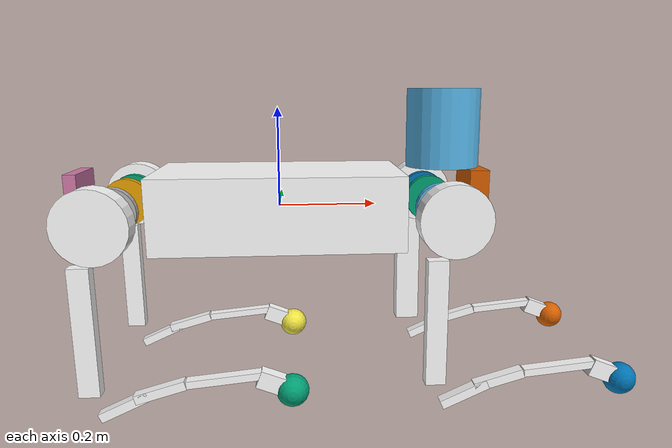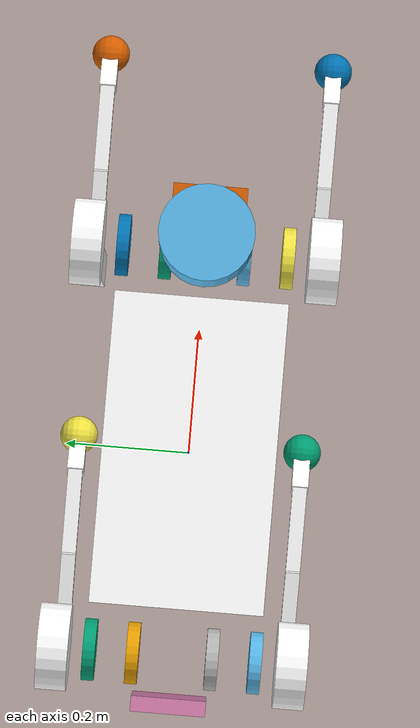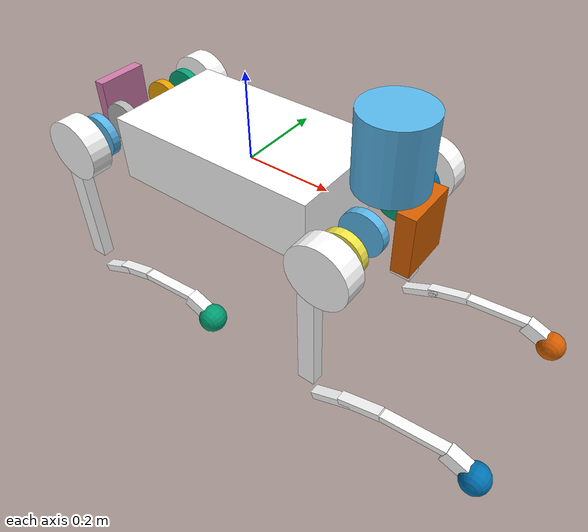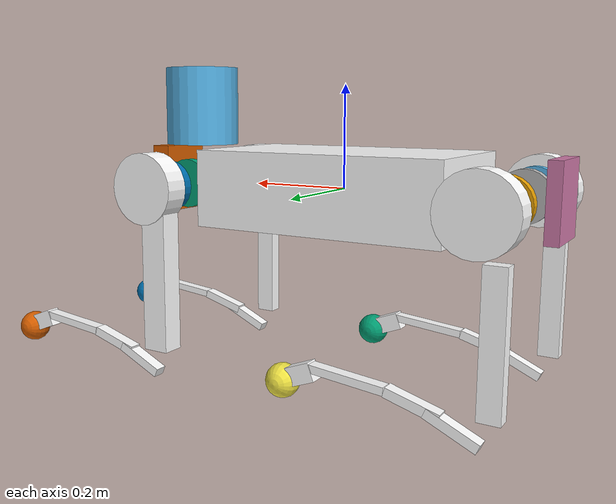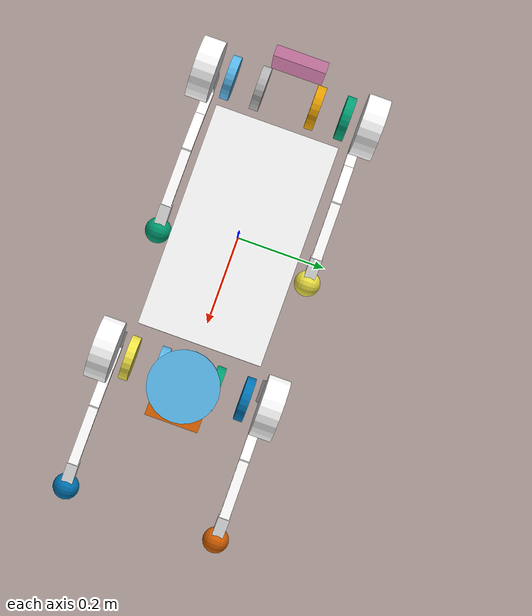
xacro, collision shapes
<?xml version="1.0"?>

<robot name="b2_description" xmlns:xacro="http://www.ros.org/wiki/xacro">

    <xacro:arg name="gpu" default="true"/>

    <xacro:include filename="$(find b2_description)/urdf/b2_description.urdf"/>
    <xacro:include filename="$(find b2_description)/xacro/gazebo.xacro"/>

</robot>

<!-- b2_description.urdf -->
<robot
  name="b2_description">
  <link
    name="base_link">
    <inertial>
      <origin
        xyz="0.000458 0.005261 0.000665"
        rpy="0 0 0" />
      <mass
        value="35.86" />
      <inertia
        ixx="0.27466"
        ixy="-0.000622"
        ixz="0.00315"
        iyy="1.0618"
        iyz="-0.00139"
        izz="1.1825" />
    </inertial>
    <visual>
      <origin
        xyz="0 0 0"
        rpy="0 0 0" />
      <geometry>
        <mesh
          filename="package://b2_description/meshes/base_link.dae" />
      </geometry>
      <material
        name="">
        <color
          rgba="1 1 1 1" />
      </material>
    </visual>
    <collision>
      <origin
        xyz="0 0 0"
        rpy="0 0 0" />
        <geometry>
          <box size="0.5 0.28 0.15" />
        </geometry>
    </collision>
  </link>
  <link
    name="lidar_link">
    <inertial>
      <origin
        xyz="0.34218 0 0.17851"
        rpy="0 0 0" />
      <mass
        value="4.19E-15" />
      <inertia
        ixx="1.68E-27"
        ixy="-3.2E-45"
        ixz="7.68E-44"
        iyy="1.68E-27"
        iyz="-9.26E-47"
        izz="1.68E-27" />
    </inertial>
    <collision>
      <origin
        xyz="0 0 -0.02"
        rpy="0 0 0" />
      <geometry>
        <cylinder length="0.16" radius="0.076" />
      </geometry>
    </collision>
  </link>
  <joint
    name="joint_lidar"
    type="fixed">
    <origin
      xyz="0.34218 0 0.17851"
      rpy="0 0 0" />
    <parent
      link="base_link" />
    <child
      link="lidar_link" />
    <axis
      xyz="0 0 0" />
  </joint>
  <link
    name="f_dc_link">
    <inertial>
      <origin
        xyz="3.47E-18 0 5.55E-17"
        rpy="0 0 0" />
      <mass
        value="4.19E-15" />
      <inertia
        ixx="1.68E-27"
        ixy="-9.81E-45"
        ixz="-2.54E-44"
        iyy="1.68E-27"
        iyz="0"
        izz="1.68E-27" />
    </inertial>
  </link>
  <joint
    name="joint_f_dc"
    type="fixed">
    <origin
      xyz="0.41251 0.024997 0.04765"
      rpy="-2.3562 0 -1.5708" />
    <parent
      link="base_link" />
    <child
      link="f_dc_link" />
    <axis
      xyz="0 0 0" />
  </joint>
  <link
    name="r_dc_link">
    <inertial>
      <origin
        xyz="-7.46E-16 -3.33E-16 -1.11E-15"
        rpy="0 0 0" />
      <mass
        value="4.19E-15" />
      <inertia
        ixx="1.68E-27"
        ixy="-4.31E-44"
        ixz="2.48E-45"
        iyy="1.68E-27"
        iyz="0"
        izz="1.68E-27" />
    </inertial>
  </link>
  <joint
    name="joint_r_dc"
    type="fixed">
    <origin
      xyz="-0.4081 -0.025 0.024861"
      rpy="-2.3557 0 1.5708" />
    <parent
      link="base_link" />
    <child
      link="r_dc_link" />
    <axis
      xyz="0 0 0" />
  </joint>
  <link
    name="imu_link">
    <inertial>
      <origin
        xyz="-2.02E-17 1.73E-17 -1.39E-17"
        rpy="0 0 0" />
      <mass
        value="4.19E-15" />
      <inertia
        ixx="1.68E-27"
        ixy="1.84E-44"
        ixz="-7.35E-44"
        iyy="1.68E-27"
        iyz="-3.67E-44"
        izz="1.68E-27" />
    </inertial>
  </link>
  <joint
    name="joint_imu"
    type="fixed">
    <origin
      xyz="0 -0.02341 0.04927"
      rpy="0 0 0" />
    <parent
      link="base_link" />
    <child
      link="imu_link" />
    <axis
      xyz="0 0 0" />
  </joint>
  <link
    name="head_Link">
    <inertial>
      <origin
        xyz="0.33989 -0.000168 0.12029"
        rpy="0 0 0" />
      <mass
        value="3.6885" />
      <inertia
        ixx="0.026455"
        ixy="3.15E-05"
        ixz="0.00166"
        iyy="0.029221"
        iyz="-3.27E-05"
        izz="0.010918" />
    </inertial>
    <collision>
      <origin
        xyz="0.41 0 0.005"
        rpy="0 0 0" />
      <geometry>
        <box size="0.04 0.12 0.14" />
      </geometry>
    </collision>
  </link>
  <joint
    name="joint_head"
    type="fixed">
    <origin
      xyz="0 0 0"
      rpy="0 0 0" />
    <parent
      link="base_link" />
    <child
      link="head_Link" />
    <axis
      xyz="0 0 0" />
  </joint>
  <link
    name="tail_link">
    <inertial>
      <origin
        xyz="-0.37448 0.000488 0.006495"
        rpy="0 0 0" />
      <mass
        value="0.795" />
      <inertia
        ixx="0.0028118"
        ixy="1.95E-05"
        ixz="-7.87E-06"
        iyy="0.0047506"
        iyz="-1.57E-05"
        izz="0.0029154" />
    </inertial>
    <collision>
      <origin
        xyz="-0.405 0 0.005"
        rpy="0 0 0" />
      <geometry>
        <box size="0.025 0.12 0.14" />
      </geometry>
    </collision>
  </link>
  <joint
    name="joint_tail"
    type="fixed">
    <origin
      xyz="0 0 0"
      rpy="0 0 0" />
    <parent
      link="base_link" />
    <child
      link="tail_link" />
    <axis
      xyz="0 0 0" />
  </joint>
  <link
    name="FL_hip">
    <inertial>
      <origin
        xyz="-0.003841 -0.009068 0"
        rpy="0 0 0" />
      <mass
        value="2.673" />
      <inertia
        ixx="0.0033188"
        ixy="7.16E-05"
        ixz="-3.77E-07"
        iyy="0.0048743"
        iyz="4E-09"
        izz="0.0037087" />
    </inertial>
    <visual>
      <origin
        xyz="0 0 0"
        rpy="0 0 0" />
      <geometry>
        <mesh
          filename="package://b2_description/meshes/FL_hip.dae" />
      </geometry>
      <material
        name="">
        <color
          rgba="1 1 1 1" />
      </material>
    </visual>
    <collision>
      <origin
        xyz="0 0.12 0"
        rpy="1.5707963267948966 0 0" />
      <geometry>
        <cylinder length="0.05" radius="0.07" />
      </geometry>
    </collision>
  </link>
  <joint
    name="FL_hip_joint"
    type="revolute">
    <origin
      xyz="0.3285 0.072 0"
      rpy="0 0 0" />
    <parent
      link="base_link" />
    <child
      link="FL_hip" />
    <axis
      xyz="1 0 0" />
    <limit
      lower="-0.87"
      upper="0.87"
      effort="200"
      velocity="23" />
  </joint>
  <link name="FL_hip_rotor">
    <collision>
      <origin rpy="0 1.5707963267948966 0" xyz="0 0 0"/>
      <geometry>
        <cylinder length="0.02" radius="0.05"/>
      </geometry>
    </collision>
    <inertial>
      <origin rpy="0 0 0" xyz="0.0 0.0 0.0"/>
      <mass value="0.2734"/>
      <inertia ixx="0.000144463" ixy="0.0" ixz="0.0" iyy="0.000144463" iyz="0.0" izz="0.000263053"/>
    </inertial>
  </link>
  <joint name="FL_hip_rotor_joint" type="fixed">
    <origin rpy="0 0 0" xyz="0.20205 0.072 0"/>
    <parent link="base_link"/>
    <child link="FL_hip_rotor"/>
  </joint>
  <link
    name="FL_thigh">
    <inertial>
      <origin
        xyz="-0.006279 -0.032049 -0.057835"
        rpy="0 0 0" />
      <mass
        value="4.536" />
      <inertia
        ixx="0.062299"
        ixy="0.00087781"
        ixz="-0.0036475"
        iyy="0.061399"
        iyz="0.0083537"
        izz="0.0081997" />
    </inertial>
    <visual>
      <origin
        xyz="0 0 0"
        rpy="0 0 0" />
      <geometry>
        <mesh
          filename="package://b2_description/meshes/FL_thigh.dae" />
      </geometry>
      <material
        name="">
        <color
          rgba="1 1 1 1" />
      </material>
    </visual>
    <collision>
      <origin
        xyz="-0.025 0 -0.16"
        rpy="0 1.57 0" />
      <geometry>
        <box size="0.32 0.0445 0.054" />
      </geometry>
    </collision>
  </link>
  <joint
    name="FL_thigh_joint"
    type="revolute">
    <origin
      xyz="0 0.11973 0"
      rpy="0 0 0" />
    <parent
      link="FL_hip" />
    <child
      link="FL_thigh" />
    <axis
      xyz="0 1 0" />
    <limit
      lower="-0.94"
      upper="4.69"
      effort="200"
      velocity="23" />
  </joint>
  <link name="FL_thigh_rotor">
    <collision>
      <origin rpy="1.5707963267948966 0 0" xyz="0 0 0"/>
      <geometry>
        <cylinder length="0.02" radius="0.05"/>
      </geometry>
    </collision>
    <inertial>
      <origin rpy="0 0 0" xyz="0.0 0.0 0.0"/>
      <mass value="0.2734"/>
      <inertia ixx="0.000144463" ixy="0.0" ixz="0.0" iyy="0.000144463" iyz="0.0" izz="0.000263053"/>
    </inertial>
  </link>
  <joint name="FL_thigh_rotor_joint" type="fixed">
    <origin rpy="0 0 0" xyz="0 -0.00798 0"/>
    <parent link="FL_hip"/>
    <child link="FL_thigh_rotor"/>
  </joint>
  <link
    name="FL_calf">
    <inertial>
      <origin
        xyz="0.012422 0 -0.12499"
        rpy="0 0 0" />
      <mass
        value="0.404" />
      <inertia
        ixx="0.01143"
        ixy="0"
        ixz="0.000643"
        iyy="0.011534"
        iyz="0"
        izz="0.000331" />
    </inertial>
    <visual>
      <origin
        xyz="0 0 0"
        rpy="0 0 0" />
      <geometry>
        <mesh
          filename="package://b2_description/meshes/FL_calf.dae" />
      </geometry>
      <material
        name="">
        <color
          rgba="1 1 1 1" />
      </material>
    </visual>
    <collision>
      <origin rpy="0 1.2 0" xyz="-0.002 0 -0.03"/>
      <geometry>
        <box size="0.1 0.0245 0.018"/>
      </geometry>
    </collision>
    <collision>
      <origin rpy="0 1.35 0" xyz="0.022 0 -0.1"/>
      <geometry>
        <box size="0.1 0.0245 0.018"/>
      </geometry>
    </collision>
    <collision>
      <origin rpy="0 1.53 0" xyz="0.036 0 -0.225"/>
      <geometry>
        <box size="0.15 0.0245 0.015"/>
      </geometry>
    </collision>
    <collision>
      <origin rpy="0 2 0" xyz="0.023 0 -0.31"/>
      <geometry>
        <box size="0.05 0.028 0.035"/>
      </geometry>
    </collision>
  </link>
  <joint
    name="FL_calf_joint"
    type="revolute">
    <origin
      xyz="0 -8.6984E-05 -0.35"
      rpy="0 0 0" />
    <parent
      link="FL_thigh" />
    <child
      link="FL_calf" />
    <axis
      xyz="0 1 0" />
    <limit
      lower="-2.82"
      upper="-0.43"
      effort="320"
      velocity="14" />
  </joint>
  <link name="FL_calf_rotor">
    <collision>
      <origin rpy="1.5707963267948966 0 0" xyz="0 0 0"/>
      <geometry>
        <cylinder length="0.02" radius="0.05"/>
      </geometry>
    </collision>
    <inertial>
      <origin rpy="0 0 0" xyz="0.0 0.0 0.0"/>
      <mass value="0.2734"/>
      <inertia ixx="0.000144463" ixy="0.0" ixz="0.0" iyy="0.000144463" iyz="0.0" izz="0.000263053"/>
    </inertial>
  </link>
  <joint name="FL_calf_rotor_joint" type="fixed">
    <origin rpy="0 0 0" xyz="0 -0.05788 0"/>
    <parent link="FL_thigh"/>
    <child link="FL_calf_rotor"/>
  </joint>
  <link
    name="FL_foot">
    <inertial>
      <origin
        xyz="-0.006511 0 -0.010144"
        rpy="0 0 0" />
      <mass
        value="0.126" />
      <inertia
        ixx="3.8E-05"
        ixy="0"
        ixz="1.1E-05"
        iyy="4.1E-05"
        iyz="0"
        izz="4.2E-05" />
    </inertial>
    <collision>
      <origin
        xyz="0 0 0"
        rpy="1.57 0 0" />
      <geometry>
        <sphere radius="0.032" />
      </geometry>
    </collision>
  </link>
  <joint
    name="FL_foot_joint"
    type="fixed" dont_collapse="true">
    <origin
      xyz="0 0 -0.35"
      rpy="0 0 0" />
    <parent
      link="FL_calf" />
    <child
      link="FL_foot" />
  </joint>
  <link
    name="FR_hip">
    <inertial>
      <origin
        xyz="-0.009305 0.010228 0.000264"
        rpy="0 0 0" />
      <mass
        value="2.673" />
      <inertia
        ixx="0.0026431"
        ixy="-0.00019234"
        ixz="-6.76E-06"
        iyy="0.0046728"
        iyz="7.16E-06"
        izz="0.0034208" />
    </inertial>
    <visual>
      <origin
        xyz="0 0 0"
        rpy="0 0 0" />
      <geometry>
        <mesh
          filename="package://b2_description/meshes/FR_hip.dae" />
      </geometry>
      <material
        name="">
        <color
          rgba="1 1 1 1" />
      </material>
    </visual>
    <collision>
      <origin
        xyz="0 -0.12 0"
        rpy="1.5707963267948966 0 0" />
      <geometry>
        <cylinder length="0.05" radius="0.07" />
      </geometry>
    </collision>
  </link>
  <joint
    name="FR_hip_joint"
    type="revolute">
    <origin
      xyz="0.3285 -0.072 0"
      rpy="0 0 0" />
    <parent
      link="base_link" />
    <child
      link="FR_hip" />
    <axis
      xyz="1 0 0" />
    <limit
      lower="-0.87"
      upper="0.87"
      effort="200"
      velocity="23" />
  </joint>
  <link name="FR_hip_rotor">
    <collision>
      <origin rpy="0 1.5707963267948966 0" xyz="0 0 0"/>
      <geometry>
        <cylinder length="0.02" radius="0.05"/>
      </geometry>
    </collision>
    <inertial>
      <origin rpy="0 0 0" xyz="0.0 0.0 0.0"/>
      <mass value="0.2734"/>
      <inertia ixx="0.000144463" ixy="0.0" ixz="0.0" iyy="0.000144463" iyz="0.0" izz="0.000263053"/>
    </inertial>
  </link>
  <joint name="FR_hip_rotor_joint" type="fixed">
    <origin rpy="0 0 0" xyz="0.20205 -0.072 0"/>
    <parent link="base_link"/>
    <child link="FR_hip_rotor"/>
  </joint>
  <link
    name="FR_thigh">
    <inertial>
      <origin
        xyz="-0.006279 0.032049 -0.057835"
        rpy="0 0 0" />
      <mass
        value="4.536" />
      <inertia
        ixx="0.06229908"
        ixy="-0.000877808"
        ixz="-0.003647464"
        iyy="0.06139927"
        iyz="-0.008353671"
        izz="0.008199745" />
    </inertial>
    <visual>
      <origin
        xyz="0 0 0"
        rpy="0 0 0" />
      <geometry>
        <mesh
          filename="package://b2_description/meshes/FR_thigh.dae" />
      </geometry>
      <material
        name="">
        <color
          rgba="1 1 1 1" />
      </material>
    </visual>
    <collision>
      <origin rpy="0 1.57 0" xyz="-0.03 0 -0.2"/>
      <geometry>
        <box size="0.25 0.028 0.04"/>
      </geometry>
    </collision>
  </link>
  <joint
    name="FR_thigh_joint"
    type="revolute">
    <origin
      xyz="0 -0.11973 0"
      rpy="0 0 0" />
    <parent
      link="FR_hip" />
    <child
      link="FR_thigh" />
    <axis
      xyz="0 1 0" />
    <limit
      lower="-0.94"
      upper="4.69"
      effort="200"
      velocity="23" />
  </joint>
  <link name="FR_thigh_rotor">
    <collision>
      <origin rpy="1.5707963267948966 0 0" xyz="0 0 0"/>
      <geometry>
        <cylinder length="0.02" radius="0.05"/>
      </geometry>
    </collision>
    <inertial>
      <origin rpy="0 0 0" xyz="0.0 0.0 0.0"/>
      <mass value="0.2734"/>
      <inertia ixx="0.000144463" ixy="0.0" ixz="0.0" iyy="0.000144463" iyz="0.0" izz="0.000263053"/>
    </inertial>
  </link>
  <joint name="FR_thigh_rotor_joint" type="fixed">
    <origin rpy="0 0 0" xyz="0 0.00798 0"/>
    <parent link="FR_hip"/>
    <child link="FR_thigh_rotor"/>
  </joint>
  <link
    name="FR_calf">
    <inertial>
      <origin
        xyz="0.012422 0 -0.12499"
        rpy="0 0 0" />
      <mass
        value="0.404" />
      <inertia
        ixx="0.01143"
        ixy="0"
        ixz="0.000643"
        iyy="0.011534"
        iyz="0"
        izz="0.000331" />
    </inertial>
    <visual>
      <origin
        xyz="0 0 0"
        rpy="0 0 0" />
      <geometry>
        <mesh
          filename="package://b2_description/meshes/FR_calf.dae" />
      </geometry>
      <material
        name="">
        <color
          rgba="1 1 1 1" />
      </material>
    </visual>
    <collision>
      <origin rpy="0 1.2 0" xyz="-0.002 0 -0.03"/>
      <geometry>
        <box size="0.1 0.0245 0.018"/>
      </geometry>
    </collision>
    <collision>
      <origin rpy="0 1.35 0" xyz="0.022 0 -0.1"/>
      <geometry>
        <box size="0.1 0.0245 0.018"/>
      </geometry>
    </collision>
    <collision>
      <origin rpy="0 1.53 0" xyz="0.036 0 -0.225"/>
      <geometry>
        <box size="0.15 0.0245 0.015"/>
      </geometry>
    </collision>
    <collision>
      <origin rpy="0 2 0" xyz="0.023 0 -0.31"/>
      <geometry>
        <box size="0.05 0.028 0.035"/>
      </geometry>
    </collision>
  </link>
  <joint
    name="FR_calf_joint"
    type="revolute">
    <origin
      xyz="0 8.6986E-05 -0.35"
      rpy="0 0 0" />
    <parent
      link="FR_thigh" />
    <child
      link="FR_calf" />
    <axis
      xyz="0 1 0" />
    <limit
      lower="-2.82"
      upper="-0.43"
      effort="320"
      velocity="14" />
  </joint>
  <link name="FR_calf_rotor">
    <collision>
      <origin rpy="1.5707963267948966 0 0" xyz="0 0 0"/>
      <geometry>
        <cylinder length="0.02" radius="0.05"/>
      </geometry>
    </collision>
    <inertial>
      <origin rpy="0 0 0" xyz="0.0 0.0 0.0"/>
      <mass value="0.2734"/>
      <inertia ixx="0.000144463" ixy="0.0" ixz="0.0" iyy="0.000144463" iyz="0.0" izz="0.000263053"/>
    </inertial>
  </link>
  <joint name="FR_calf_rotor_joint" type="fixed">
    <origin rpy="0 0 0" xyz="0 0.05788 0"/>
    <parent link="FR_thigh"/>
    <child link="FR_calf_rotor"/>
  </joint>
  <link
    name="FR_foot">
    <inertial>
      <origin
        xyz="-0.006511 0 -0.010144"
        rpy="0 0 0" />
      <mass
        value="0.126" />
      <inertia
        ixx="3.8E-05"
        ixy="0"
        ixz="1.1E-05"
        iyy="4.1E-05"
        iyz="0"
        izz="4.2E-05" />
    </inertial>
    <collision>
      <origin
        xyz="0 0 0"
        rpy="1.57 0 0" />
      <geometry>
        <sphere radius="0.032" />
      </geometry>
    </collision>
  </link>
  <joint
    name="FR_foot_joint"
    type="fixed" dont_collapse="true">
    <origin
      xyz="0 0 -0.35"
      rpy="0 0 0" />
    <parent
      link="FR_calf" />
    <child
      link="FR_foot" />
  </joint>
  <link
    name="RL_hip">
    <inertial>
      <origin
        xyz="0.009305 -0.010228 0.000264"
        rpy="0 0 0" />
      <mass
        value="2.673" />
      <inertia
        ixx="0.0026431"
        ixy="-0.00019234"
        ixz="6.76E-06"
        iyy="0.0046728"
        iyz="-7.16E-06"
        izz="0.0034208" />
    </inertial>
    <visual>
      <origin
        xyz="0 0 0"
        rpy="0 0 0" />
      <geometry>
        <mesh
          filename="package://b2_description/meshes/RL_hip.dae" />
      </geometry>
      <material
        name="">
        <color
          rgba="1 1 1 1" />
      </material>
    </visual>
    <collision>
      <origin
        xyz="0 0.12 0"
        rpy="1.5707963267948966 0 0" />
      <geometry>
        <cylinder length="0.05" radius="0.07" />
      </geometry>
    </collision>
  </link>
  <joint
    name="RL_hip_joint"
    type="revolute">
    <origin
      xyz="-0.3285 0.072 0"
      rpy="0 0 0" />
    <parent
      link="base_link" />
    <child
      link="RL_hip" />
    <axis
      xyz="1 0 0" />
    <limit
      lower="-0.87"
      upper="0.87"
      effort="200"
      velocity="23" />
  </joint>
  <link name="RL_hip_rotor">
    <collision>
      <origin rpy="0 1.5707963267948966 0" xyz="0 0 0"/>
      <geometry>
        <cylinder length="0.02" radius="0.05"/>
      </geometry>
    </collision>
    <inertial>
      <origin rpy="0 0 0" xyz="0.0 0.0 0.0"/>
      <mass value="0.2734"/>
      <inertia ixx="0.000144463" ixy="0.0" ixz="0.0" iyy="0.000144463" iyz="0.0" izz="0.000263053"/>
    </inertial>
  </link>
  <joint name="RL_hip_rotor_joint" type="fixed">
    <origin rpy="0 0 0" xyz="-0.20205 0.072 0"/>
    <parent link="base_link"/>
    <child link="RL_hip_rotor"/>
  </joint>
  <link
    name="RL_thigh">
    <inertial>
      <origin
        xyz="-0.006279 -0.032049 -0.057835"
        rpy="0 0 0" />
      <mass
        value="4.536" />
      <inertia
        ixx="0.06229908"
        ixy="0.000877808"
        ixz="-0.003647464"
        iyy="0.06139927"
        iyz="0.008353671"
        izz="0.008199745" />
    </inertial>
    <visual>
      <origin
        xyz="0 0 0"
        rpy="0 0 0" />
      <geometry>
        <mesh
          filename="package://b2_description/meshes/RL_thigh.dae" />
      </geometry>
      <material
        name="">
        <color
          rgba="1 1 1 1" />
      </material>
    </visual>
    <collision>
      <origin rpy="0 1.57 0" xyz="-0.03 0 -0.2"/>
      <geometry>
        <box size="0.25 0.028 0.04"/>
      </geometry>
    </collision>
  </link>
  <joint
    name="RL_thigh_joint"
    type="revolute">
    <origin
      xyz="0 0.11973 0"
      rpy="0 0 0" />
    <parent
      link="RL_hip" />
    <child
      link="RL_thigh" />
    <axis
      xyz="0 1 0" />
    <limit
      lower="-0.94"
      upper="4.69"
      effort="200"
      velocity="23" />
  </joint>
  <link name="RL_thigh_rotor">
    <collision>
      <origin rpy="1.5707963267948966 0 0" xyz="0 0 0"/>
      <geometry>
        <cylinder length="0.02" radius="0.05"/>
      </geometry>
    </collision>
    <inertial>
      <origin rpy="0 0 0" xyz="0.0 0.0 0.0"/>
      <mass value="0.2734"/>
      <inertia ixx="0.000144463" ixy="0.0" ixz="0.0" iyy="0.000144463" iyz="0.0" izz="0.000263053"/>
    </inertial>
  </link>
  <joint name="RL_thigh_rotor_joint" type="fixed">
    <origin rpy="0 0 0" xyz="0 -0.00798 0"/>
    <parent link="RL_hip"/>
    <child link="RL_thigh_rotor"/>
  </joint>
  <link
    name="RL_calf">
    <inertial>
      <origin
        xyz="0.012422 0 -0.12499"
        rpy="0 0 0" />
      <mass
        value="0.404" />
      <inertia
        ixx="0.01143"
        ixy="0"
        ixz="0.000643"
        iyy="0.011534"
        iyz="0"
        izz="0.000331" />
    </inertial>
    <visual>
      <origin
        xyz="0 0 0"
        rpy="0 0 0" />
      <geometry>
        <mesh
          filename="package://b2_description/meshes/RL_calf.dae" />
      </geometry>
      <material
        name="">
        <color
          rgba="1 1 1 1" />
      </material>
    </visual>
    <collision>
      <origin rpy="0 1.2 0" xyz="-0.002 0 -0.03"/>
      <geometry>
        <box size="0.1 0.0245 0.018"/>
      </geometry>
    </collision>
    <collision>
      <origin rpy="0 1.35 0" xyz="0.022 0 -0.1"/>
      <geometry>
        <box size="0.1 0.0245 0.018"/>
      </geometry>
    </collision>
    <collision>
      <origin rpy="0 1.53 0" xyz="0.036 0 -0.225"/>
      <geometry>
        <box size="0.15 0.0245 0.015"/>
      </geometry>
    </collision>
    <collision>
      <origin rpy="0 2 0" xyz="0.023 0 -0.31"/>
      <geometry>
        <box size="0.05 0.028 0.035"/>
      </geometry>
    </collision>
  </link>
  <joint
    name="RL_calf_joint"
    type="revolute">
    <origin
      xyz="0 -8.6984E-05 -0.35"
      rpy="0 0 0" />
    <parent
      link="RL_thigh" />
    <child
      link="RL_calf" />
    <axis
      xyz="0 1 0" />
    <limit
      lower="-2.82"
      upper="-0.43"
      effort="320"
      velocity="14" />
  </joint>
  <link name="RL_calf_rotor">
    <collision>
      <origin rpy="1.5707963267948966 0 0" xyz="0 0 0"/>
      <geometry>
        <cylinder length="0.02" radius="0.05"/>
      </geometry>
    </collision>
    <inertial>
      <origin rpy="0 0 0" xyz="0.0 0.0 0.0"/>
      <mass value="0.2734"/>
      <inertia ixx="0.000144463" ixy="0.0" ixz="0.0" iyy="0.000144463" iyz="0.0" izz="0.000263053"/>
    </inertial>
  </link>
  <joint name="RL_calf_rotor_joint" type="fixed">
    <origin rpy="0 0 0" xyz="0 -0.05788 0"/>
    <parent link="RL_thigh"/>
    <child link="RL_calf_rotor"/>
  </joint>
  <link
    name="RL_foot">
    <inertial>
      <origin
        xyz="-0.006511 0 -0.010144"
        rpy="0 0 0" />
      <mass
        value="0.126" />
      <inertia
        ixx="3.8E-05"
        ixy="0"
        ixz="1.1E-05"
        iyy="4.1E-05"
        iyz="0"
        izz="4.2E-05" />
    </inertial>
    <collision>
      <origin
        xyz="0 0 0"
        rpy="1.57 0 0" />
      <geometry>
        <sphere radius="0.032" />
      </geometry>
    </collision>
  </link>
  <joint
    name="RL_foot_joint"
    type="fixed" dont_collapse="true">
    <origin
      xyz="0 0 -0.35"
      rpy="0 0 0" />
    <parent
      link="RL_calf" />
    <child
      link="RL_foot" />
  </joint>
  <link
    name="RR_hip">
    <inertial>
      <origin
        xyz="0.003841 0.009068 0"
        rpy="0 0 0" />
      <mass
        value="2.673" />
      <inertia
        ixx="0.0033188"
        ixy="7.16E-05"
        ixz="3.77E-07"
        iyy="0.0048743"
        iyz="-4E-09"
        izz="0.0037087" />
    </inertial>
    <visual>
      <origin
        xyz="0 0 0"
        rpy="0 0 0" />
      <geometry>
        <mesh
          filename="package://b2_description/meshes/RR_hip.dae" />
      </geometry>
      <material
        name="">
        <color
          rgba="1 1 1 1" />
      </material>
    </visual>
    <collision>
      <origin
        xyz="0 -0.12 0"
        rpy="1.5707963267948966 0 0" />
      <geometry>
        <cylinder length="0.05" radius="0.07" />
      </geometry>
    </collision>
  </link>
  <joint
    name="RR_hip_joint"
    type="revolute">
    <origin
      xyz="-0.3285 -0.072 0"
      rpy="0 0 0" />
    <parent
      link="base_link" />
    <child
      link="RR_hip" />
    <axis
      xyz="1 0 0" />
    <limit
      lower="-0.87"
      upper="0.87"
      effort="200"
      velocity="23" />
  </joint>
  <link name="RR_hip_rotor">
    <collision>
      <origin rpy="0 1.5707963267948966 0" xyz="0 0 0"/>
      <geometry>
        <cylinder length="0.02" radius="0.05"/>
      </geometry>
    </collision>
    <inertial>
      <origin rpy="0 0 0" xyz="0.0 0.0 0.0"/>
      <mass value="0.2734"/>
      <inertia ixx="0.000144463" ixy="0.0" ixz="0.0" iyy="0.000144463" iyz="0.0" izz="0.000263053"/>
    </inertial>
  </link>
  <joint name="RR_hip_rotor_joint" type="fixed">
    <origin rpy="0 0 0" xyz="-0.20205 -0.072 0"/>
    <parent link="base_link"/>
    <child link="RR_hip_rotor"/>
  </joint>
  <link
    name="RR_thigh">
    <inertial>
      <origin
        xyz="-0.006279 0.032049 -0.057835"
        rpy="0 0 0" />
      <mass
        value="4.536" />
      <inertia
        ixx="0.062299"
        ixy="-0.00087781"
        ixz="-0.0036475"
        iyy="0.061399"
        iyz="-0.0083537"
        izz="0.0081997" />
    </inertial>
    <visual>
      <origin
        xyz="0 0 0"
        rpy="0 0 0" />
      <geometry>
        <mesh
          filename="package://b2_description/meshes/RR_thigh.dae" />
      </geometry>
      <material
        name="">
        <color
          rgba="1 1 1 1" />
      </material>
    </visual>
    <collision>
      <origin rpy="0 1.57 0" xyz="-0.03 0 -0.2"/>
      <geometry>
        <box size="0.25 0.028 0.04"/>
      </geometry>
    </collision>
  </link>
  <joint
    name="RR_thigh_joint"
    type="revolute">
    <origin
      xyz="0 -0.11973 0"
      rpy="0 0 0" />
    <parent
      link="RR_hip" />
    <child
      link="RR_thigh" />
    <axis
      xyz="0 1 0" />
    <limit
      lower="-0.94"
      upper="4.69"
      effort="200"
      velocity="23" />
  </joint>
  <link name="RR_thigh_rotor">
    <collision>
      <origin rpy="1.5707963267948966 0 0" xyz="0 0 0"/>
      <geometry>
        <cylinder length="0.02" radius="0.05"/>
      </geometry>
    </collision>
    <inertial>
      <origin rpy="0 0 0" xyz="0.0 0.0 0.0"/>
      <mass value="0.2734"/>
      <inertia ixx="0.000144463" ixy="0.0" ixz="0.0" iyy="0.000144463" iyz="0.0" izz="0.000263053"/>
    </inertial>
  </link>
  <joint name="RR_thigh_rotor_joint" type="fixed">
    <origin rpy="0 0 0" xyz="0 0.00798 0"/>
    <parent link="RR_hip"/>
    <child link="RR_thigh_rotor"/>
  </joint>
  <link
    name="RR_calf">
    <inertial>
      <origin
        xyz="0.012422 0 -0.12499"
        rpy="0 0 0" />
      <mass
        value="0.404" />
      <inertia
        ixx="0.01143"
        ixy="0"
        ixz="0.000643"
        iyy="0.011534"
        iyz="0"
        izz="0.000331" />
    </inertial>
    <visual>
      <origin
        xyz="0 0 0"
        rpy="0 0 0" />
      <geometry>
        <mesh
          filename="package://b2_description/meshes/RR_calf.dae" />
      </geometry>
      <material
        name="">
        <color
          rgba="1 1 1 1" />
      </material>
    </visual>
    <collision>
      <origin rpy="0 1.2 0" xyz="-0.002 0 -0.03"/>
      <geometry>
        <box size="0.1 0.0245 0.018"/>
      </geometry>
    </collision>
    <collision>
      <origin rpy="0 1.35 0" xyz="0.022 0 -0.1"/>
      <geometry>
        <box size="0.1 0.0245 0.018"/>
      </geometry>
    </collision>
    <collision>
      <origin rpy="0 1.53 0" xyz="0.036 0 -0.225"/>
      <geometry>
        <box size="0.15 0.0245 0.015"/>
      </geometry>
    </collision>
    <collision>
      <origin rpy="0 2 0" xyz="0.023 0 -0.31"/>
      <geometry>
        <box size="0.05 0.028 0.035"/>
      </geometry>
    </collision>
  </link>
  <joint
    name="RR_calf_joint"
    type="revolute">
    <origin
      xyz="0 8.6986E-05 -0.35"
      rpy="0 0 0" />
    <parent
      link="RR_thigh" />
    <child
      link="RR_calf" />
    <axis
      xyz="0 1 0" />
    <limit
      lower="-2.82"
      upper="-0.43"
      effort="320"
      velocity="14" />
  </joint>
  <link name="RR_calf_rotor">
    <collision>
      <origin rpy="1.5707963267948966 0 0" xyz="0 0 0"/>
      <geometry>
        <cylinder length="0.02" radius="0.05"/>
      </geometry>
    </collision>
    <inertial>
      <origin rpy="0 0 0" xyz="0.0 0.0 0.0"/>
      <mass value="0.2734"/>
      <inertia ixx="0.000144463" ixy="0.0" ixz="0.0" iyy="0.000144463" iyz="0.0" izz="0.000263053"/>
    </inertial>
  </link>
  <joint name="RR_calf_rotor_joint" type="fixed">
    <origin rpy="0 0 0" xyz="0 0.05788 0"/>
    <parent link="RR_thigh"/>
    <child link="RR_calf_rotor"/>
  </joint>
  <link
    name="RR_foot">
    <inertial>
      <origin
        xyz="-0.006511 0 -0.010144"
        rpy="0 0 0" />
      <mass
        value="0.126" />
      <inertia
        ixx="3.8E-05"
        ixy="0"
        ixz="1.1E-05"
        iyy="4.1E-05"
        iyz="0"
        izz="4.2E-05" />
    </inertial>
    <collision>
      <origin
        xyz="0 0 0"
        rpy="1.57 0 0" />
      <geometry>
        <sphere radius="0.032" />
      </geometry>
    </collision>
  </link>
  <joint
    name="RR_foot_joint"
    type="fixed" dont_collapse="true">
    <origin
      xyz="0 -8.6984E-05 -0.35"
      rpy="0 0 0" />
    <parent
      link="RR_calf" />
    <child
      link="RR_foot" />
  </joint>
  <link
    name="f_oc_link">
    <inertial>
      <origin
        xyz="-3.39E-15 1.46E-16 -6.11E-16"
        rpy="0 0 0" />
      <mass
        value="4.19E-15" />
      <inertia
        ixx="1.68E-27"
        ixy="-3.89E-44"
        ixz="5.04E-44"
        iyy="1.68E-27"
        iyz="2.81E-45"
        izz="1.68E-27" />
    </inertial>
  </link>
  <joint
    name="joint_f_oc"
    type="fixed">
    <origin
      xyz="0.39079 0 -0.013433"
      rpy="0 0 0" />
    <parent
      link="base_link" />
    <child
      link="f_oc_link" />
    <axis
      xyz="0 0 0" />
  </joint>
  <link
    name="r_oc_link">
    <inertial>
      <origin
        xyz="-0.39143 1.52E-07 -0.011961"
        rpy="0 0 0" />
      <mass
        value="4.19E-12" />
      <inertia
        ixx="1.68E-22"
        ixy="9.03E-39"
        ixz="0"
        iyy="1.68E-22"
        iyz="-1.2E-38"
        izz="1.68E-22" />
    </inertial>
  </link>
  <joint
    name="joint_r_oc"
    type="fixed">
    <origin
      xyz="-0.38451 0 -0.023249"
      rpy="0 0 3.14159" />
    <parent
      link="base_link" />
    <child
      link="r_oc_link" />
    <axis
      xyz="0 0 0" />
  </joint>

  <transmission name="FL_hip_tran">
    <type>transmission_interface/SimpleTransmission</type>
    <joint name="FL_hip_joint">
      <hardwareInterface>hardware_interface/EffortJointInterface</hardwareInterface>
    </joint>
    <actuator name="FL_hip_motor">
      <hardwareInterface>hardware_interface/EffortJointInterface</hardwareInterface>
      <mechanicalReduction>1</mechanicalReduction>
    </actuator>
  </transmission>
  <transmission name="FL_thigh_tran">
    <type>transmission_interface/SimpleTransmission</type>
    <joint name="FL_thigh_joint">
      <hardwareInterface>hardware_interface/EffortJointInterface</hardwareInterface>
    </joint>
    <actuator name="FL_thigh_motor">
      <hardwareInterface>hardware_interface/EffortJointInterface</hardwareInterface>
      <mechanicalReduction>1</mechanicalReduction>
    </actuator>
  </transmission>
  <transmission name="FL_calf_tran">
    <type>transmission_interface/SimpleTransmission</type>
    <joint name="FL_calf_joint">
      <hardwareInterface>hardware_interface/EffortJointInterface</hardwareInterface>
    </joint>
    <actuator name="FL_calf_motor">
      <hardwareInterface>hardware_interface/EffortJointInterface</hardwareInterface>
      <mechanicalReduction>1</mechanicalReduction>
    </actuator>
  </transmission>

  <transmission name="FR_hip_tran">
    <type>transmission_interface/SimpleTransmission</type>
    <joint name="FR_hip_joint">
      <hardwareInterface>hardware_interface/EffortJointInterface</hardwareInterface>
    </joint>
    <actuator name="FR_hip_motor">
      <hardwareInterface>hardware_interface/EffortJointInterface</hardwareInterface>
      <mechanicalReduction>1</mechanicalReduction>
    </actuator>
  </transmission>
  <transmission name="FR_thigh_tran">
    <type>transmission_interface/SimpleTransmission</type>
    <joint name="FR_thigh_joint">
      <hardwareInterface>hardware_interface/EffortJointInterface</hardwareInterface>
    </joint>
    <actuator name="FR_thigh_motor">
      <hardwareInterface>hardware_interface/EffortJointInterface</hardwareInterface>
      <mechanicalReduction>1</mechanicalReduction>
    </actuator>
  </transmission>
  <transmission name="FR_calf_tran">
    <type>transmission_interface/SimpleTransmission</type>
    <joint name="FR_calf_joint">
      <hardwareInterface>hardware_interface/EffortJointInterface</hardwareInterface>
    </joint>
    <actuator name="FR_calf_motor">
      <hardwareInterface>hardware_interface/EffortJointInterface</hardwareInterface>
      <mechanicalReduction>1</mechanicalReduction>
    </actuator>
  </transmission>

  <transmission name="RL_hip_tran">
    <type>transmission_interface/SimpleTransmission</type>
    <joint name="RL_hip_joint">
      <hardwareInterface>hardware_interface/EffortJointInterface</hardwareInterface>
    </joint>
    <actuator name="RL_hip_motor">
      <hardwareInterface>hardware_interface/EffortJointInterface</hardwareInterface>
      <mechanicalReduction>1</mechanicalReduction>
    </actuator>
  </transmission>
  <transmission name="RL_thigh_tran">
    <type>transmission_interface/SimpleTransmission</type>
    <joint name="RL_thigh_joint">
      <hardwareInterface>hardware_interface/EffortJointInterface</hardwareInterface>
    </joint>
    <actuator name="RL_thigh_motor">
      <hardwareInterface>hardware_interface/EffortJointInterface</hardwareInterface>
      <mechanicalReduction>1</mechanicalReduction>
    </actuator>
  </transmission>
  <transmission name="RL_calf_tran">
    <type>transmission_interface/SimpleTransmission</type>
    <joint name="RL_calf_joint">
      <hardwareInterface>hardware_interface/EffortJointInterface</hardwareInterface>
    </joint>
    <actuator name="RL_calf_motor">
      <hardwareInterface>hardware_interface/EffortJointInterface</hardwareInterface>
      <mechanicalReduction>1</mechanicalReduction>
    </actuator>
  </transmission>

  <transmission name="RR_hip_tran">
    <type>transmission_interface/SimpleTransmission</type>
    <joint name="RR_hip_joint">
      <hardwareInterface>hardware_interface/EffortJointInterface</hardwareInterface>
    </joint>
    <actuator name="RR_hip_motor">
      <hardwareInterface>hardware_interface/EffortJointInterface</hardwareInterface>
      <mechanicalReduction>1</mechanicalReduction>
    </actuator>
  </transmission>
  <transmission name="RR_thigh_tran">
    <type>transmission_interface/SimpleTransmission</type>
    <joint name="RR_thigh_joint">
      <hardwareInterface>hardware_interface/EffortJointInterface</hardwareInterface>
    </joint>
    <actuator name="RR_thigh_motor">
      <hardwareInterface>hardware_interface/EffortJointInterface</hardwareInterface>
      <mechanicalReduction>1</mechanicalReduction>
    </actuator>
  </transmission>
  <transmission name="RR_calf_tran">
    <type>transmission_interface/SimpleTransmission</type>
    <joint name="RR_calf_joint">
      <hardwareInterface>hardware_interface/EffortJointInterface</hardwareInterface>
    </joint>
    <actuator name="RR_calf_motor">
      <hardwareInterface>hardware_interface/EffortJointInterface</hardwareInterface>
      <mechanicalReduction>1</mechanicalReduction>
    </actuator>
  </transmission>
</robot>
